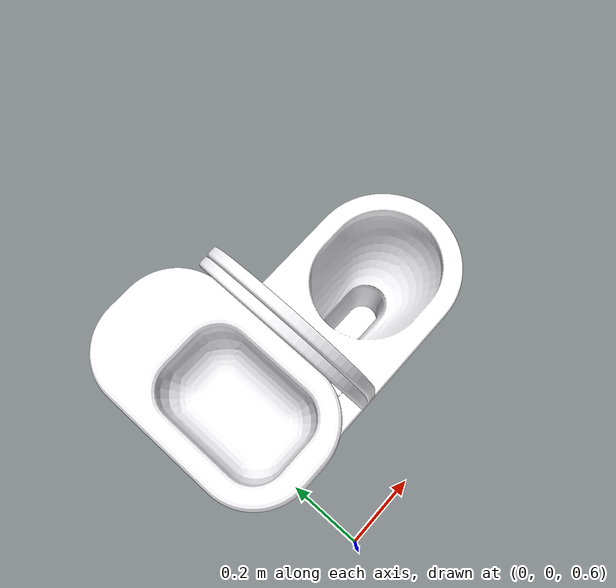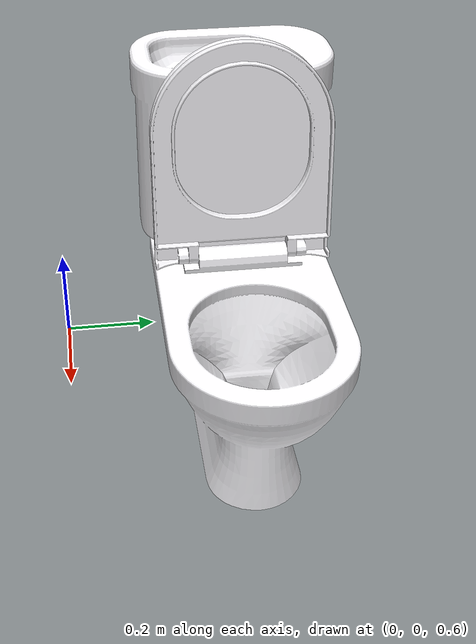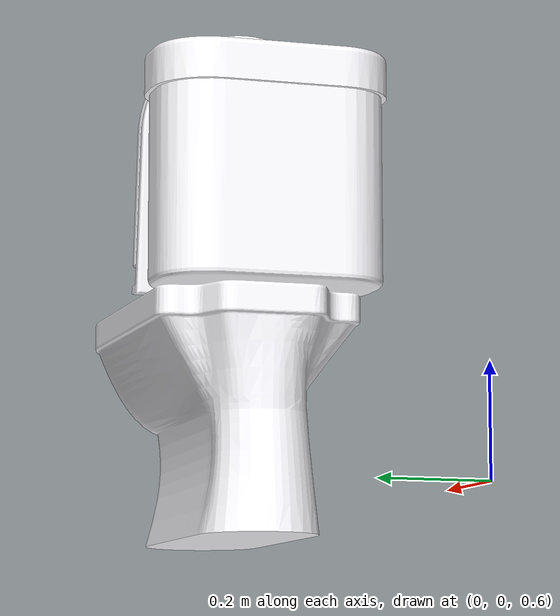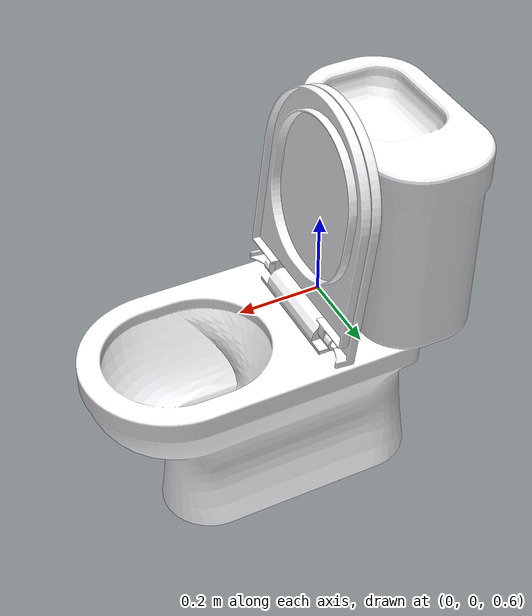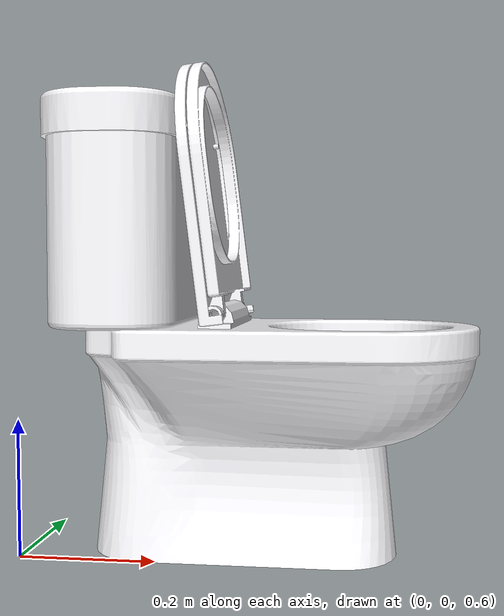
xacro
<?xml version="1.0" encoding="utf-8"?>
<robot xmlns:xacro="http://www.ros.org/wiki/xacro" name="toilet_bowl_model">
  <xacro:property name="width" value=".2" />

  <link name="toilet_bowl_base">
    <inertial>
      <origin xyz="0.168137290218174 0.37111271971656 0.900957664124744" rpy="0 0 0" />
      <mass value="147.602779533608" />
      <inertia ixx="3.30913106412552" ixy="0.00231508396789663" ixz="0.0427132161406999" iyy="4.12059766074393" iyz="-0.0411704248806174" izz="3.24537569825029" />
    </inertial>
    <visual>
      <origin xyz="0 0 0" rpy="0 0 0" />
      <geometry>
        <mesh filename="package://toilet_bowl_model/meshes/base_link.STL" />
      </geometry>
      <material name="">
        <color rgba="0.988235294117647 0.984313725490196 1 1" />
      </material>
    </visual>
    <collision>
      <origin xyz="0 0 0" rpy="0 0 0" />
      <geometry>
        <mesh filename="package://toilet_bowl_model/meshes/base_link.STL" />
      </geometry>
    </collision>
  </link>
  <link name="toilet_seat">
    <inertial>
      <origin xyz="-0.19613 0.177 0.0084034" rpy="0 0 0" />
      <mass value="1.1419" />
      <inertia ixx="0.016838" ixy="1.2216E-10" ixz="0.00017976" iyy="0.021366" iyz="1.4356E-09" izz="0.03813" />
    </inertial>
    <visual>
      <origin xyz="0 0 0" rpy="0 0 0" />
      <geometry>
        <mesh filename="package://toilet_bowl_model/meshes/toilet_seat.STL" />
      </geometry>
      <material name="">
        <color rgba="0.98824 0.98431 1 1" />
      </material>
    </visual>
    <collision>
      <origin xyz="0 0 0" rpy="0 0 0" />
      <geometry>
        <mesh filename="package://toilet_bowl_model/meshes/toilet_seat.STL" />
      </geometry>
    </collision>
  </link>
  <joint name="toilet_seat_to_base" type="fixed">
    <origin xyz="0.24103 0.19269 0.9391" rpy="0 1.4486 0" />
    <parent link="toilet_bowl_base" />
    <child link="toilet_seat" />
    <axis xyz="0 -1 0" />
    <limit lower="0" upper="-1.692" effort="0" velocity="0" />
  </joint>
  <link name="toilet_cover">
    <inertial>
      <origin xyz="-0.177 0.035959 -0.18976" rpy="0 0 0" />
      <mass value="2.5494" />
      <inertia ixx="0.040607" ixy="-2.3416E-09" ixz="-1.3977E-07" iyy="0.0667" iyz="0.0050064" izz="0.027431" />
    </inertial>
    <visual>
      <origin xyz="0 0 0" rpy="0 0 0" />
      <geometry>
        <mesh filename="package://toilet_bowl_model/meshes/toilet_cover.STL" />
      </geometry>
      <material name="ceramic">
        <color rgba="0.98824 0.98431 1 1" />
      </material>
    </visual>
    <collision>
      <origin xyz="0 0 0" rpy="0 0 0" />
      <geometry>
        <mesh filename="package://toilet_bowl_model/meshes/toilet_cover.STL" />
      </geometry>
    </collision>
  </link>
  <joint name="toilet_cover_to_base" type="fixed">
    <origin xyz="0.24103 0.19269 0.9391" rpy="3.1416 0 -1.5708" />
    <parent link="toilet_bowl_base" />
    <child link="toilet_cover" />
    <axis xyz="1 0 0" />
    <limit lower="0" upper="-1.692" effort="0" velocity="0" />
  </joint>
</robot>
